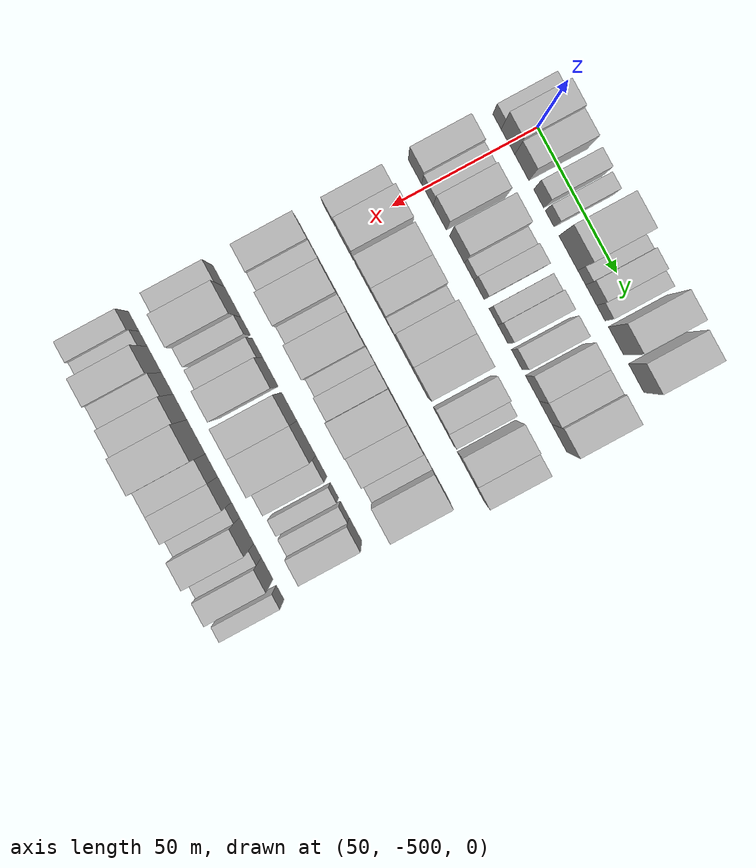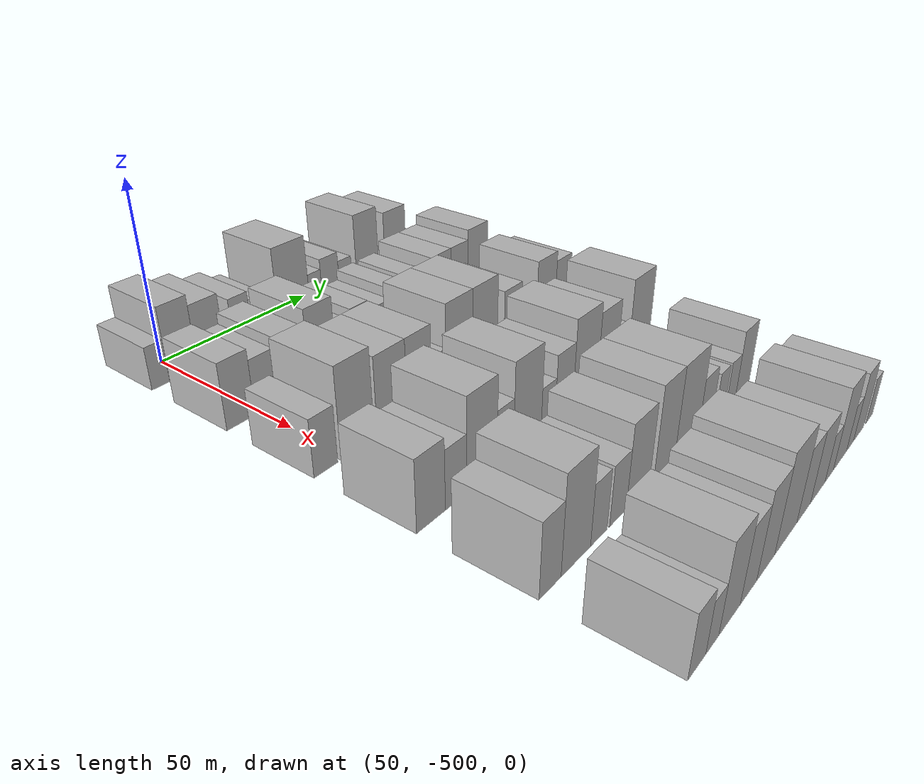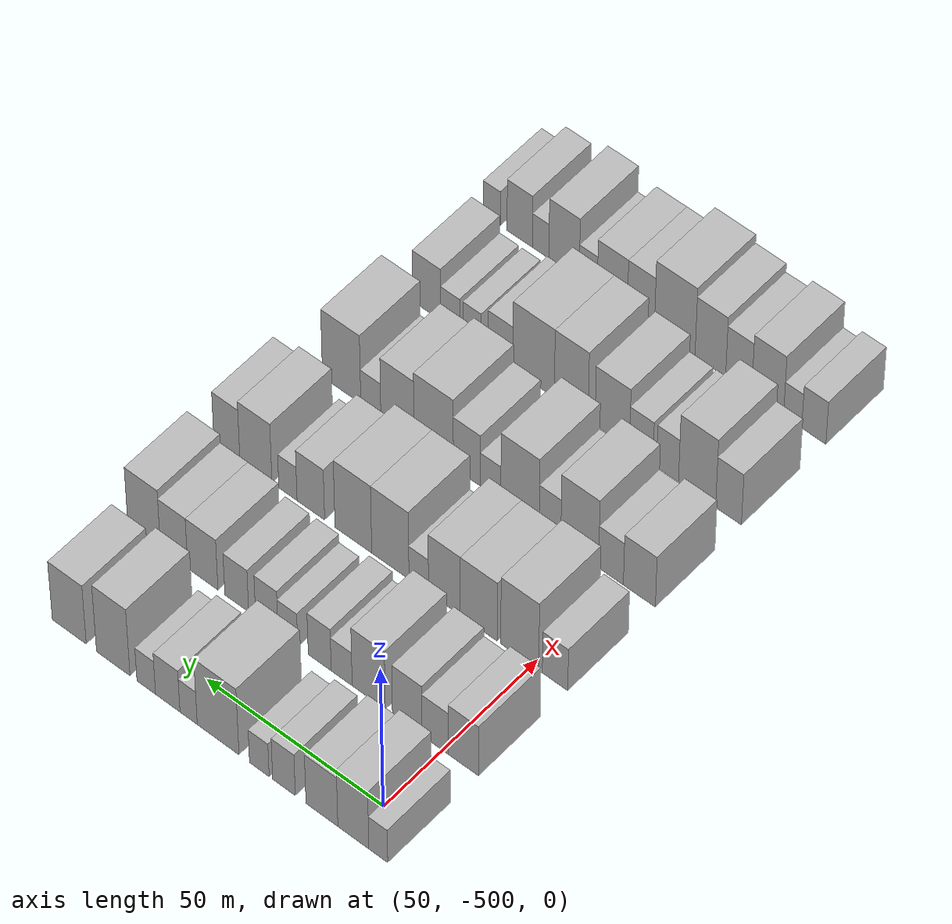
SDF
<sdf version="1.6">
 <world name="default">
  <model name="building_1">
   <static>1</static>
   <pose>50.0000 -507.3720 0 0.000000 0.000000 0.000000</pose>
   <link name="link">
    <pose>0 0 6.00 0 0 0</pose>
    <collision name="collision"><geometry><box><size>20.0000 5.2559 12.0000</size></box></geometry></collision>
    <visual name="visual">
     <cast_shadows>0</cast_shadows>
     <geometry><box><size>20.0000 5.2559 12.0000</size></box></geometry>
     <material>
      <script>
       <uri>model://HANNAS_wall/materials/scripts</uri>
       <uri>model://HANNAS_wall/materials/textures</uri>
       <name>vrc/HANNAS_wall</name>
      </script>
     </material>
    </visual>
   </link>
  </model>
  <model name="building_2">
   <static>1</static>
   <pose>50.0000 -500.4155 0 0.000000 0.000000 0.000000</pose>
   <link name="link">
    <pose>0 0 10.50 0 0 0</pose>
    <collision name="collision"><geometry><box><size>20.0000 8.6572 21.0000</size></box></geometry></collision>
    <visual name="visual">
     <cast_shadows>0</cast_shadows>
     <geometry><box><size>20.0000 8.6572 21.0000</size></box></geometry>
     <material>
      <script>
       <uri>model://HANNAS_wall/materials/scripts</uri>
       <uri>model://HANNAS_wall/materials/textures</uri>
       <name>vrc/HANNAS_wall</name>
      </script>
     </material>
    </visual>
   </link>
  </model>
  <model name="building_3">
   <static>1</static>
   <pose>50.0000 -491.6169 0 0.000000 0.000000 0.000000</pose>
   <link name="link">
    <pose>0 0 9.00 0 0 0</pose>
    <collision name="collision"><geometry><box><size>20.0000 8.9400 18.0000</size></box></geometry></collision>
    <visual name="visual">
     <cast_shadows>0</cast_shadows>
     <geometry><box><size>20.0000 8.9400 18.0000</size></box></geometry>
     <material>
      <script>
       <uri>model://HANNAS_wall/materials/scripts</uri>
       <uri>model://HANNAS_wall/materials/textures</uri>
       <name>vrc/HANNAS_wall</name>
      </script>
     </material>
    </visual>
   </link>
  </model>
  <model name="building_4">
   <static>1</static>
   <pose>50.0000 -480.9546 0 0.000000 0.000000 0.000000</pose>
   <link name="link">
    <pose>0 0 7.50 0 0 0</pose>
    <collision name="collision"><geometry><box><size>20.0000 6.3845 15.0000</size></box></geometry></collision>
    <visual name="visual">
     <cast_shadows>0</cast_shadows>
     <geometry><box><size>20.0000 6.3845 15.0000</size></box></geometry>
     <material>
      <script>
       <uri>model://HANNAS_wall/materials/scripts</uri>
       <uri>model://HANNAS_wall/materials/textures</uri>
       <name>vrc/HANNAS_wall</name>
      </script>
     </material>
    </visual>
   </link>
  </model>
  <model name="building_5">
   <static>1</static>
   <pose>50.0000 -473.9846 0 0.000000 0.000000 0.000000</pose>
   <link name="link">
    <pose>0 0 6.00 0 0 0</pose>
    <collision name="collision"><geometry><box><size>20.0000 5.5555 12.0000</size></box></geometry></collision>
    <visual name="visual">
     <cast_shadows>0</cast_shadows>
     <geometry><box><size>20.0000 5.5555 12.0000</size></box></geometry>
     <material>
      <script>
       <uri>model://HANNAS_wall/materials/scripts</uri>
       <uri>model://HANNAS_wall/materials/textures</uri>
       <name>vrc/HANNAS_wall</name>
      </script>
     </material>
    </visual>
   </link>
  </model>
  <model name="building_6">
   <static>1</static>
   <pose>50.0000 -462.2609 0 0.000000 0.000000 0.000000</pose>
   <link name="link">
    <pose>0 0 12.00 0 0 0</pose>
    <collision name="collision"><geometry><box><size>20.0000 11.8918 24.0000</size></box></geometry></collision>
    <visual name="visual">
     <cast_shadows>0</cast_shadows>
     <geometry><box><size>20.0000 11.8918 24.0000</size></box></geometry>
     <material>
      <script>
       <uri>model://HANNAS_wall/materials/scripts</uri>
       <uri>model://HANNAS_wall/materials/textures</uri>
       <name>vrc/HANNAS_wall</name>
      </script>
     </material>
    </visual>
   </link>
  </model>
  <model name="building_7">
   <static>1</static>
   <pose>50.0000 -453.8444 0 0.000000 0.000000 0.000000</pose>
   <link name="link">
    <pose>0 0 6.00 0 0 0</pose>
    <collision name="collision"><geometry><box><size>20.0000 4.9412 12.0000</size></box></geometry></collision>
    <visual name="visual">
     <cast_shadows>0</cast_shadows>
     <geometry><box><size>20.0000 4.9412 12.0000</size></box></geometry>
     <material>
      <script>
       <uri>model://HANNAS_wall/materials/scripts</uri>
       <uri>model://HANNAS_wall/materials/textures</uri>
       <name>vrc/HANNAS_wall</name>
      </script>
     </material>
    </visual>
   </link>
  </model>
  <model name="building_8">
   <static>1</static>
   <pose>50.0000 -447.8587 0 0.000000 0.000000 0.000000</pose>
   <link name="link">
    <pose>0 0 7.50 0 0 0</pose>
    <collision name="collision"><geometry><box><size>20.0000 7.0300 15.0000</size></box></geometry></collision>
    <visual name="visual">
     <cast_shadows>0</cast_shadows>
     <geometry><box><size>20.0000 7.0300 15.0000</size></box></geometry>
     <material>
      <script>
       <uri>model://HANNAS_wall/materials/scripts</uri>
       <uri>model://HANNAS_wall/materials/textures</uri>
       <name>vrc/HANNAS_wall</name>
      </script>
     </material>
    </visual>
   </link>
  </model>
  <model name="building_9">
   <static>1</static>
   <pose>50.0000 -441.6673 0 0.000000 0.000000 0.000000</pose>
   <link name="link">
    <pose>0 0 6.00 0 0 0</pose>
    <collision name="collision"><geometry><box><size>20.0000 5.3528 12.0000</size></box></geometry></collision>
    <visual name="visual">
     <cast_shadows>0</cast_shadows>
     <geometry><box><size>20.0000 5.3528 12.0000</size></box></geometry>
     <material>
      <script>
       <uri>model://HANNAS_wall/materials/scripts</uri>
       <uri>model://HANNAS_wall/materials/textures</uri>
       <name>vrc/HANNAS_wall</name>
      </script>
     </material>
    </visual>
   </link>
  </model>
  <model name="building_10">
   <static>1</static>
   <pose>50.0000 -432.1386 0 0.000000 0.000000 0.000000</pose>
   <link name="link">
    <pose>0 0 12.00 0 0 0</pose>
    <collision name="collision"><geometry><box><size>20.0000 9.7046 24.0000</size></box></geometry></collision>
    <visual name="visual">
     <cast_shadows>0</cast_shadows>
     <geometry><box><size>20.0000 9.7046 24.0000</size></box></geometry>
     <material>
      <script>
       <uri>model://HANNAS_wall/materials/scripts</uri>
       <uri>model://HANNAS_wall/materials/textures</uri>
       <name>vrc/HANNAS_wall</name>
      </script>
     </material>
    </visual>
   </link>
  </model>
  <model name="building_11">
   <static>1</static>
   <pose>50.0000 -419.3477 0 0.000000 0.000000 0.000000</pose>
   <link name="link">
    <pose>0 0 10.50 0 0 0</pose>
    <collision name="collision"><geometry><box><size>20.0000 9.8773 21.0000</size></box></geometry></collision>
    <visual name="visual">
     <cast_shadows>0</cast_shadows>
     <geometry><box><size>20.0000 9.8773 21.0000</size></box></geometry>
     <material>
      <script>
       <uri>model://HANNAS_wall/materials/scripts</uri>
       <uri>model://HANNAS_wall/materials/textures</uri>
       <name>vrc/HANNAS_wall</name>
      </script>
     </material>
    </visual>
   </link>
  </model>
  <model name="building_126">
   <static>1</static>
   <pose>79.0000 -505.7774 0 0.000000 0.000000 0.000000</pose>
   <link name="link">
    <pose>0 0 9.00 0 0 0</pose>
    <collision name="collision"><geometry><box><size>20.0000 8.4453 18.0000</size></box></geometry></collision>
    <visual name="visual">
     <cast_shadows>0</cast_shadows>
     <geometry><box><size>20.0000 8.4453 18.0000</size></box></geometry>
     <material>
      <script>
       <uri>model://HANNAS_wall/materials/scripts</uri>
       <uri>model://HANNAS_wall/materials/textures</uri>
       <name>vrc/HANNAS_wall</name>
      </script>
     </material>
    </visual>
   </link>
  </model>
  <model name="building_127">
   <static>1</static>
   <pose>79.0000 -497.8836 0 0.000000 0.000000 0.000000</pose>
   <link name="link">
    <pose>0 0 7.50 0 0 0</pose>
    <collision name="collision"><geometry><box><size>20.0000 7.3422 15.0000</size></box></geometry></collision>
    <visual name="visual">
     <cast_shadows>0</cast_shadows>
     <geometry><box><size>20.0000 7.3422 15.0000</size></box></geometry>
     <material>
      <script>
       <uri>model://HANNAS_wall/materials/scripts</uri>
       <uri>model://HANNAS_wall/materials/textures</uri>
       <name>vrc/HANNAS_wall</name>
      </script>
     </material>
    </visual>
   </link>
  </model>
  <model name="building_128">
   <static>1</static>
   <pose>79.0000 -490.0337 0 0.000000 0.000000 0.000000</pose>
   <link name="link">
    <pose>0 0 9.00 0 0 0</pose>
    <collision name="collision"><geometry><box><size>20.0000 8.3576 18.0000</size></box></geometry></collision>
    <visual name="visual">
     <cast_shadows>0</cast_shadows>
     <geometry><box><size>20.0000 8.3576 18.0000</size></box></geometry>
     <material>
      <script>
       <uri>model://HANNAS_wall/materials/scripts</uri>
       <uri>model://HANNAS_wall/materials/textures</uri>
       <name>vrc/HANNAS_wall</name>
      </script>
     </material>
    </visual>
   </link>
  </model>
  <model name="building_129">
   <static>1</static>
   <pose>79.0000 -479.1654 0 0.000000 0.000000 0.000000</pose>
   <link name="link">
    <pose>0 0 10.50 0 0 0</pose>
    <collision name="collision"><geometry><box><size>20.0000 9.3791 21.0000</size></box></geometry></collision>
    <visual name="visual">
     <cast_shadows>0</cast_shadows>
     <geometry><box><size>20.0000 9.3791 21.0000</size></box></geometry>
     <material>
      <script>
       <uri>model://HANNAS_wall/materials/scripts</uri>
       <uri>model://HANNAS_wall/materials/textures</uri>
       <name>vrc/HANNAS_wall</name>
      </script>
     </material>
    </visual>
   </link>
  </model>
  <model name="building_130">
   <static>1</static>
   <pose>79.0000 -471.4929 0 0.000000 0.000000 0.000000</pose>
   <link name="link">
    <pose>0 0 6.00 0 0 0</pose>
    <collision name="collision"><geometry><box><size>20.0000 5.9658 12.0000</size></box></geometry></collision>
    <visual name="visual">
     <cast_shadows>0</cast_shadows>
     <geometry><box><size>20.0000 5.9658 12.0000</size></box></geometry>
     <material>
      <script>
       <uri>model://HANNAS_wall/materials/scripts</uri>
       <uri>model://HANNAS_wall/materials/textures</uri>
       <name>vrc/HANNAS_wall</name>
      </script>
     </material>
    </visual>
   </link>
  </model>
  <model name="building_131">
   <static>1</static>
   <pose>79.0000 -465.2414 0 0.000000 0.000000 0.000000</pose>
   <link name="link">
    <pose>0 0 7.50 0 0 0</pose>
    <collision name="collision"><geometry><box><size>20.0000 6.5371 15.0000</size></box></geometry></collision>
    <visual name="visual">
     <cast_shadows>0</cast_shadows>
     <geometry><box><size>20.0000 6.5371 15.0000</size></box></geometry>
     <material>
      <script>
       <uri>model://HANNAS_wall/materials/scripts</uri>
       <uri>model://HANNAS_wall/materials/textures</uri>
       <name>vrc/HANNAS_wall</name>
      </script>
     </material>
    </visual>
   </link>
  </model>
  <model name="building_132">
   <static>1</static>
   <pose>79.0000 -456.1525 0 0.000000 0.000000 0.000000</pose>
   <link name="link">
    <pose>0 0 6.00 0 0 0</pose>
    <collision name="collision"><geometry><box><size>20.0000 5.6408 12.0000</size></box></geometry></collision>
    <visual name="visual">
     <cast_shadows>0</cast_shadows>
     <geometry><box><size>20.0000 5.6408 12.0000</size></box></geometry>
     <material>
      <script>
       <uri>model://HANNAS_wall/materials/scripts</uri>
       <uri>model://HANNAS_wall/materials/textures</uri>
       <name>vrc/HANNAS_wall</name>
      </script>
     </material>
    </visual>
   </link>
  </model>
  <model name="building_133">
   <static>1</static>
   <pose>79.0000 -450.1040 0 0.000000 0.000000 0.000000</pose>
   <link name="link">
    <pose>0 0 7.50 0 0 0</pose>
    <collision name="collision"><geometry><box><size>20.0000 6.4563 15.0000</size></box></geometry></collision>
    <visual name="visual">
     <cast_shadows>0</cast_shadows>
     <geometry><box><size>20.0000 6.4563 15.0000</size></box></geometry>
     <material>
      <script>
       <uri>model://HANNAS_wall/materials/scripts</uri>
       <uri>model://HANNAS_wall/materials/textures</uri>
       <name>vrc/HANNAS_wall</name>
      </script>
     </material>
    </visual>
   </link>
  </model>
  <model name="building_134">
   <static>1</static>
   <pose>79.0000 -441.4419 0 0.000000 0.000000 0.000000</pose>
   <link name="link">
    <pose>0 0 7.50 0 0 0</pose>
    <collision name="collision"><geometry><box><size>20.0000 6.8679 15.0000</size></box></geometry></collision>
    <visual name="visual">
     <cast_shadows>0</cast_shadows>
     <geometry><box><size>20.0000 6.8679 15.0000</size></box></geometry>
     <material>
      <script>
       <uri>model://HANNAS_wall/materials/scripts</uri>
       <uri>model://HANNAS_wall/materials/textures</uri>
       <name>vrc/HANNAS_wall</name>
      </script>
     </material>
    </visual>
   </link>
  </model>
  <model name="building_135">
   <static>1</static>
   <pose>79.0000 -431.6335 0 0.000000 0.000000 0.000000</pose>
   <link name="link">
    <pose>0 0 9.00 0 0 0</pose>
    <collision name="collision"><geometry><box><size>20.0000 8.7489 18.0000</size></box></geometry></collision>
    <visual name="visual">
     <cast_shadows>0</cast_shadows>
     <geometry><box><size>20.0000 8.7489 18.0000</size></box></geometry>
     <material>
      <script>
       <uri>model://HANNAS_wall/materials/scripts</uri>
       <uri>model://HANNAS_wall/materials/textures</uri>
       <name>vrc/HANNAS_wall</name>
      </script>
     </material>
    </visual>
   </link>
  </model>
  <model name="building_136">
   <static>1</static>
   <pose>79.0000 -423.2730 0 0.000000 0.000000 0.000000</pose>
   <link name="link">
    <pose>0 0 9.00 0 0 0</pose>
    <collision name="collision"><geometry><box><size>20.0000 7.9722 18.0000</size></box></geometry></collision>
    <visual name="visual">
     <cast_shadows>0</cast_shadows>
     <geometry><box><size>20.0000 7.9722 18.0000</size></box></geometry>
     <material>
      <script>
       <uri>model://HANNAS_wall/materials/scripts</uri>
       <uri>model://HANNAS_wall/materials/textures</uri>
       <name>vrc/HANNAS_wall</name>
      </script>
     </material>
    </visual>
   </link>
  </model>
  <model name="building_137">
   <static>1</static>
   <pose>79.0000 -414.5224 0 0.000000 0.000000 0.000000</pose>
   <link name="link">
    <pose>0 0 10.50 0 0 0</pose>
    <collision name="collision"><geometry><box><size>20.0000 9.5289 21.0000</size></box></geometry></collision>
    <visual name="visual">
     <cast_shadows>0</cast_shadows>
     <geometry><box><size>20.0000 9.5289 21.0000</size></box></geometry>
     <material>
      <script>
       <uri>model://HANNAS_wall/materials/scripts</uri>
       <uri>model://HANNAS_wall/materials/textures</uri>
       <name>vrc/HANNAS_wall</name>
      </script>
     </material>
    </visual>
   </link>
  </model>
  <model name="building_240">
   <static>1</static>
   <pose>108.0000 -506.4384 0 0.000000 0.000000 0.000000</pose>
   <link name="link">
    <pose>0 0 7.50 0 0 0</pose>
    <collision name="collision"><geometry><box><size>20.0000 7.1232 15.0000</size></box></geometry></collision>
    <visual name="visual">
     <cast_shadows>0</cast_shadows>
     <geometry><box><size>20.0000 7.1232 15.0000</size></box></geometry>
     <material>
      <script>
       <uri>model://HANNAS_wall/materials/scripts</uri>
       <uri>model://HANNAS_wall/materials/textures</uri>
       <name>vrc/HANNAS_wall</name>
      </script>
     </material>
    </visual>
   </link>
  </model>
  <model name="building_241">
   <static>1</static>
   <pose>108.0000 -496.5421 0 0.000000 0.000000 0.000000</pose>
   <link name="link">
    <pose>0 0 12.00 0 0 0</pose>
    <collision name="collision"><geometry><box><size>20.0000 10.6694 24.0000</size></box></geometry></collision>
    <visual name="visual">
     <cast_shadows>0</cast_shadows>
     <geometry><box><size>20.0000 10.6694 24.0000</size></box></geometry>
     <material>
      <script>
       <uri>model://HANNAS_wall/materials/scripts</uri>
       <uri>model://HANNAS_wall/materials/textures</uri>
       <name>vrc/HANNAS_wall</name>
      </script>
     </material>
    </visual>
   </link>
  </model>
  <model name="building_242">
   <static>1</static>
   <pose>108.0000 -484.9924 0 0.000000 0.000000 0.000000</pose>
   <link name="link">
    <pose>0 0 10.50 0 0 0</pose>
    <collision name="collision"><geometry><box><size>20.0000 10.4301 21.0000</size></box></geometry></collision>
    <visual name="visual">
     <cast_shadows>0</cast_shadows>
     <geometry><box><size>20.0000 10.4301 21.0000</size></box></geometry>
     <material>
      <script>
       <uri>model://HANNAS_wall/materials/scripts</uri>
       <uri>model://HANNAS_wall/materials/textures</uri>
       <name>vrc/HANNAS_wall</name>
      </script>
     </material>
    </visual>
   </link>
  </model>
  <model name="building_243">
   <static>1</static>
   <pose>108.0000 -475.2619 0 0.000000 0.000000 0.000000</pose>
   <link name="link">
    <pose>0 0 10.50 0 0 0</pose>
    <collision name="collision"><geometry><box><size>20.0000 9.0308 21.0000</size></box></geometry></collision>
    <visual name="visual">
     <cast_shadows>0</cast_shadows>
     <geometry><box><size>20.0000 9.0308 21.0000</size></box></geometry>
     <material>
      <script>
       <uri>model://HANNAS_wall/materials/scripts</uri>
       <uri>model://HANNAS_wall/materials/textures</uri>
       <name>vrc/HANNAS_wall</name>
      </script>
     </material>
    </visual>
   </link>
  </model>
  <model name="building_244">
   <static>1</static>
   <pose>108.0000 -467.9550 0 0.000000 0.000000 0.000000</pose>
   <link name="link">
    <pose>0 0 6.00 0 0 0</pose>
    <collision name="collision"><geometry><box><size>20.0000 5.5829 12.0000</size></box></geometry></collision>
    <visual name="visual">
     <cast_shadows>0</cast_shadows>
     <geometry><box><size>20.0000 5.5829 12.0000</size></box></geometry>
     <material>
      <script>
       <uri>model://HANNAS_wall/materials/scripts</uri>
       <uri>model://HANNAS_wall/materials/textures</uri>
       <name>vrc/HANNAS_wall</name>
      </script>
     </material>
    </visual>
   </link>
  </model>
  <model name="building_245">
   <static>1</static>
   <pose>108.0000 -459.8248 0 0.000000 0.000000 0.000000</pose>
   <link name="link">
    <pose>0 0 12.00 0 0 0</pose>
    <collision name="collision"><geometry><box><size>20.0000 10.6775 24.0000</size></box></geometry></collision>
    <visual name="visual">
     <cast_shadows>0</cast_shadows>
     <geometry><box><size>20.0000 10.6775 24.0000</size></box></geometry>
     <material>
      <script>
       <uri>model://HANNAS_wall/materials/scripts</uri>
       <uri>model://HANNAS_wall/materials/textures</uri>
       <name>vrc/HANNAS_wall</name>
      </script>
     </material>
    </visual>
   </link>
  </model>
  <model name="building_246">
   <static>1</static>
   <pose>108.0000 -449.1925 0 0.000000 0.000000 0.000000</pose>
   <link name="link">
    <pose>0 0 12.00 0 0 0</pose>
    <collision name="collision"><geometry><box><size>20.0000 10.5873 24.0000</size></box></geometry></collision>
    <visual name="visual">
     <cast_shadows>0</cast_shadows>
     <geometry><box><size>20.0000 10.5873 24.0000</size></box></geometry>
     <material>
      <script>
       <uri>model://HANNAS_wall/materials/scripts</uri>
       <uri>model://HANNAS_wall/materials/textures</uri>
       <name>vrc/HANNAS_wall</name>
      </script>
     </material>
    </visual>
   </link>
  </model>
  <model name="building_247">
   <static>1</static>
   <pose>108.0000 -436.8990 0 0.000000 0.000000 0.000000</pose>
   <link name="link">
    <pose>0 0 9.00 0 0 0</pose>
    <collision name="collision"><geometry><box><size>20.0000 7.9996 18.0000</size></box></geometry></collision>
    <visual name="visual">
     <cast_shadows>0</cast_shadows>
     <geometry><box><size>20.0000 7.9996 18.0000</size></box></geometry>
     <material>
      <script>
       <uri>model://HANNAS_wall/materials/scripts</uri>
       <uri>model://HANNAS_wall/materials/textures</uri>
       <name>vrc/HANNAS_wall</name>
      </script>
     </material>
    </visual>
   </link>
  </model>
  <model name="building_248">
   <static>1</static>
   <pose>108.0000 -430.2458 0 0.000000 0.000000 0.000000</pose>
   <link name="link">
    <pose>0 0 6.00 0 0 0</pose>
    <collision name="collision"><geometry><box><size>20.0000 5.3069 12.0000</size></box></geometry></collision>
    <visual name="visual">
     <cast_shadows>0</cast_shadows>
     <geometry><box><size>20.0000 5.3069 12.0000</size></box></geometry>
     <material>
      <script>
       <uri>model://HANNAS_wall/materials/scripts</uri>
       <uri>model://HANNAS_wall/materials/textures</uri>
       <name>vrc/HANNAS_wall</name>
      </script>
     </material>
    </visual>
   </link>
  </model>
  <model name="building_249">
   <static>1</static>
   <pose>108.0000 -420.8967 0 0.000000 0.000000 0.000000</pose>
   <link name="link">
    <pose>0 0 10.50 0 0 0</pose>
    <collision name="collision"><geometry><box><size>20.0000 9.3913 21.0000</size></box></geometry></collision>
    <visual name="visual">
     <cast_shadows>0</cast_shadows>
     <geometry><box><size>20.0000 9.3913 21.0000</size></box></geometry>
     <material>
      <script>
       <uri>model://HANNAS_wall/materials/scripts</uri>
       <uri>model://HANNAS_wall/materials/textures</uri>
       <name>vrc/HANNAS_wall</name>
      </script>
     </material>
    </visual>
   </link>
  </model>
  <model name="building_250">
   <static>1</static>
   <pose>108.0000 -412.4030 0 0.000000 0.000000 0.000000</pose>
   <link name="link">
    <pose>0 0 9.00 0 0 0</pose>
    <collision name="collision"><geometry><box><size>20.0000 7.5961 18.0000</size></box></geometry></collision>
    <visual name="visual">
     <cast_shadows>0</cast_shadows>
     <geometry><box><size>20.0000 7.5961 18.0000</size></box></geometry>
     <material>
      <script>
       <uri>model://HANNAS_wall/materials/scripts</uri>
       <uri>model://HANNAS_wall/materials/textures</uri>
       <name>vrc/HANNAS_wall</name>
      </script>
     </material>
    </visual>
   </link>
  </model>
  <model name="building_349">
   <static>1</static>
   <pose>137.0000 -505.5143 0 0.000000 0.000000 0.000000</pose>
   <link name="link">
    <pose>0 0 9.00 0 0 0</pose>
    <collision name="collision"><geometry><box><size>20.0000 8.9715 18.0000</size></box></geometry></collision>
    <visual name="visual">
     <cast_shadows>0</cast_shadows>
     <geometry><box><size>20.0000 8.9715 18.0000</size></box></geometry>
     <material>
      <script>
       <uri>model://HANNAS_wall/materials/scripts</uri>
       <uri>model://HANNAS_wall/materials/textures</uri>
       <name>vrc/HANNAS_wall</name>
      </script>
     </material>
    </visual>
   </link>
  </model>
  <model name="building_350">
   <static>1</static>
   <pose>137.0000 -497.5231 0 0.000000 0.000000 0.000000</pose>
   <link name="link">
    <pose>0 0 7.50 0 0 0</pose>
    <collision name="collision"><geometry><box><size>20.0000 7.0109 15.0000</size></box></geometry></collision>
    <visual name="visual">
     <cast_shadows>0</cast_shadows>
     <geometry><box><size>20.0000 7.0109 15.0000</size></box></geometry>
     <material>
      <script>
       <uri>model://HANNAS_wall/materials/scripts</uri>
       <uri>model://HANNAS_wall/materials/textures</uri>
       <name>vrc/HANNAS_wall</name>
      </script>
     </material>
    </visual>
   </link>
  </model>
  <model name="building_351">
   <static>1</static>
   <pose>137.0000 -488.6831 0 0.000000 0.000000 0.000000</pose>
   <link name="link">
    <pose>0 0 12.00 0 0 0</pose>
    <collision name="collision"><geometry><box><size>20.0000 10.6690 24.0000</size></box></geometry></collision>
    <visual name="visual">
     <cast_shadows>0</cast_shadows>
     <geometry><box><size>20.0000 10.6690 24.0000</size></box></geometry>
     <material>
      <script>
       <uri>model://HANNAS_wall/materials/scripts</uri>
       <uri>model://HANNAS_wall/materials/textures</uri>
       <name>vrc/HANNAS_wall</name>
      </script>
     </material>
    </visual>
   </link>
  </model>
  <model name="building_352">
   <static>1</static>
   <pose>137.0000 -480.2746 0 0.000000 0.000000 0.000000</pose>
   <link name="link">
    <pose>0 0 7.50 0 0 0</pose>
    <collision name="collision"><geometry><box><size>20.0000 6.1480 15.0000</size></box></geometry></collision>
    <visual name="visual">
     <cast_shadows>0</cast_shadows>
     <geometry><box><size>20.0000 6.1480 15.0000</size></box></geometry>
     <material>
      <script>
       <uri>model://HANNAS_wall/materials/scripts</uri>
       <uri>model://HANNAS_wall/materials/textures</uri>
       <name>vrc/HANNAS_wall</name>
      </script>
     </material>
    </visual>
   </link>
  </model>
  <model name="building_353">
   <static>1</static>
   <pose>137.0000 -471.7348 0 0.000000 0.000000 0.000000</pose>
   <link name="link">
    <pose>0 0 12.00 0 0 0</pose>
    <collision name="collision"><geometry><box><size>20.0000 10.9318 24.0000</size></box></geometry></collision>
    <visual name="visual">
     <cast_shadows>0</cast_shadows>
     <geometry><box><size>20.0000 10.9318 24.0000</size></box></geometry>
     <material>
      <script>
       <uri>model://HANNAS_wall/materials/scripts</uri>
       <uri>model://HANNAS_wall/materials/textures</uri>
       <name>vrc/HANNAS_wall</name>
      </script>
     </material>
    </visual>
   </link>
  </model>
  <model name="building_354">
   <static>1</static>
   <pose>137.0000 -463.3557 0 0.000000 0.000000 0.000000</pose>
   <link name="link">
    <pose>0 0 6.00 0 0 0</pose>
    <collision name="collision"><geometry><box><size>20.0000 5.8263 12.0000</size></box></geometry></collision>
    <visual name="visual">
     <cast_shadows>0</cast_shadows>
     <geometry><box><size>20.0000 5.8263 12.0000</size></box></geometry>
     <material>
      <script>
       <uri>model://HANNAS_wall/materials/scripts</uri>
       <uri>model://HANNAS_wall/materials/textures</uri>
       <name>vrc/HANNAS_wall</name>
      </script>
     </material>
    </visual>
   </link>
  </model>
  <model name="building_355">
   <static>1</static>
   <pose>137.0000 -456.5477 0 0.000000 0.000000 0.000000</pose>
   <link name="link">
    <pose>0 0 9.00 0 0 0</pose>
    <collision name="collision"><geometry><box><size>20.0000 7.7898 18.0000</size></box></geometry></collision>
    <visual name="visual">
     <cast_shadows>0</cast_shadows>
     <geometry><box><size>20.0000 7.7898 18.0000</size></box></geometry>
     <material>
      <script>
       <uri>model://HANNAS_wall/materials/scripts</uri>
       <uri>model://HANNAS_wall/materials/textures</uri>
       <name>vrc/HANNAS_wall</name>
      </script>
     </material>
    </visual>
   </link>
  </model>
  <model name="building_356">
   <static>1</static>
   <pose>137.0000 -446.9699 0 0.000000 0.000000 0.000000</pose>
   <link name="link">
    <pose>0 0 12.00 0 0 0</pose>
    <collision name="collision"><geometry><box><size>20.0000 11.3658 24.0000</size></box></geometry></collision>
    <visual name="visual">
     <cast_shadows>0</cast_shadows>
     <geometry><box><size>20.0000 11.3658 24.0000</size></box></geometry>
     <material>
      <script>
       <uri>model://HANNAS_wall/materials/scripts</uri>
       <uri>model://HANNAS_wall/materials/textures</uri>
       <name>vrc/HANNAS_wall</name>
      </script>
     </material>
    </visual>
   </link>
  </model>
  <model name="building_357">
   <static>1</static>
   <pose>137.0000 -436.4491 0 0.000000 0.000000 0.000000</pose>
   <link name="link">
    <pose>0 0 10.50 0 0 0</pose>
    <collision name="collision"><geometry><box><size>20.0000 9.6758 21.0000</size></box></geometry></collision>
    <visual name="visual">
     <cast_shadows>0</cast_shadows>
     <geometry><box><size>20.0000 9.6758 21.0000</size></box></geometry>
     <material>
      <script>
       <uri>model://HANNAS_wall/materials/scripts</uri>
       <uri>model://HANNAS_wall/materials/textures</uri>
       <name>vrc/HANNAS_wall</name>
      </script>
     </material>
    </visual>
   </link>
  </model>
  <model name="building_358">
   <static>1</static>
   <pose>137.0000 -428.6806 0 0.000000 0.000000 0.000000</pose>
   <link name="link">
    <pose>0 0 6.00 0 0 0</pose>
    <collision name="collision"><geometry><box><size>20.0000 5.8612 12.0000</size></box></geometry></collision>
    <visual name="visual">
     <cast_shadows>0</cast_shadows>
     <geometry><box><size>20.0000 5.8612 12.0000</size></box></geometry>
     <material>
      <script>
       <uri>model://HANNAS_wall/materials/scripts</uri>
       <uri>model://HANNAS_wall/materials/textures</uri>
       <name>vrc/HANNAS_wall</name>
      </script>
     </material>
    </visual>
   </link>
  </model>
  <model name="building_359">
   <static>1</static>
   <pose>137.0000 -420.1443 0 0.000000 0.000000 0.000000</pose>
   <link name="link">
    <pose>0 0 12.00 0 0 0</pose>
    <collision name="collision"><geometry><box><size>20.0000 11.2114 24.0000</size></box></geometry></collision>
    <visual name="visual">
     <cast_shadows>0</cast_shadows>
     <geometry><box><size>20.0000 11.2114 24.0000</size></box></geometry>
     <material>
      <script>
       <uri>model://HANNAS_wall/materials/scripts</uri>
       <uri>model://HANNAS_wall/materials/textures</uri>
       <name>vrc/HANNAS_wall</name>
      </script>
     </material>
    </visual>
   </link>
  </model>
  <model name="building_460">
   <static>1</static>
   <pose>166.0000 -506.3725 0 0.000000 0.000000 0.000000</pose>
   <link name="link">
    <pose>0 0 9.00 0 0 0</pose>
    <collision name="collision"><geometry><box><size>20.0000 7.2551 18.0000</size></box></geometry></collision>
    <visual name="visual">
     <cast_shadows>0</cast_shadows>
     <geometry><box><size>20.0000 7.2551 18.0000</size></box></geometry>
     <material>
      <script>
       <uri>model://HANNAS_wall/materials/scripts</uri>
       <uri>model://HANNAS_wall/materials/textures</uri>
       <name>vrc/HANNAS_wall</name>
      </script>
     </material>
    </visual>
   </link>
  </model>
  <model name="building_461">
   <static>1</static>
   <pose>166.0000 -497.5041 0 0.000000 0.000000 0.000000</pose>
   <link name="link">
    <pose>0 0 12.00 0 0 0</pose>
    <collision name="collision"><geometry><box><size>20.0000 10.4818 24.0000</size></box></geometry></collision>
    <visual name="visual">
     <cast_shadows>0</cast_shadows>
     <geometry><box><size>20.0000 10.4818 24.0000</size></box></geometry>
     <material>
      <script>
       <uri>model://HANNAS_wall/materials/scripts</uri>
       <uri>model://HANNAS_wall/materials/textures</uri>
       <name>vrc/HANNAS_wall</name>
      </script>
     </material>
    </visual>
   </link>
  </model>
  <model name="building_462">
   <static>1</static>
   <pose>166.0000 -489.1427 0 0.000000 0.000000 0.000000</pose>
   <link name="link">
    <pose>0 0 7.50 0 0 0</pose>
    <collision name="collision"><geometry><box><size>20.0000 6.2410 15.0000</size></box></geometry></collision>
    <visual name="visual">
     <cast_shadows>0</cast_shadows>
     <geometry><box><size>20.0000 6.2410 15.0000</size></box></geometry>
     <material>
      <script>
       <uri>model://HANNAS_wall/materials/scripts</uri>
       <uri>model://HANNAS_wall/materials/textures</uri>
       <name>vrc/HANNAS_wall</name>
      </script>
     </material>
    </visual>
   </link>
  </model>
  <model name="building_463">
   <static>1</static>
   <pose>166.0000 -481.6739 0 0.000000 0.000000 0.000000</pose>
   <link name="link">
    <pose>0 0 7.50 0 0 0</pose>
    <collision name="collision"><geometry><box><size>20.0000 6.6966 15.0000</size></box></geometry></collision>
    <visual name="visual">
     <cast_shadows>0</cast_shadows>
     <geometry><box><size>20.0000 6.6966 15.0000</size></box></geometry>
     <material>
      <script>
       <uri>model://HANNAS_wall/materials/scripts</uri>
       <uri>model://HANNAS_wall/materials/textures</uri>
       <name>vrc/HANNAS_wall</name>
      </script>
     </material>
    </visual>
   </link>
  </model>
  <model name="building_464">
   <static>1</static>
   <pose>166.0000 -473.4098 0 0.000000 0.000000 0.000000</pose>
   <link name="link">
    <pose>0 0 10.50 0 0 0</pose>
    <collision name="collision"><geometry><box><size>20.0000 9.8315 21.0000</size></box></geometry></collision>
    <visual name="visual">
     <cast_shadows>0</cast_shadows>
     <geometry><box><size>20.0000 9.8315 21.0000</size></box></geometry>
     <material>
      <script>
       <uri>model://HANNAS_wall/materials/scripts</uri>
       <uri>model://HANNAS_wall/materials/textures</uri>
       <name>vrc/HANNAS_wall</name>
      </script>
     </material>
    </visual>
   </link>
  </model>
  <model name="building_465">
   <static>1</static>
   <pose>166.0000 -461.6357 0 0.000000 0.000000 0.000000</pose>
   <link name="link">
    <pose>0 0 12.00 0 0 0</pose>
    <collision name="collision"><geometry><box><size>20.0000 9.7166 24.0000</size></box></geometry></collision>
    <visual name="visual">
     <cast_shadows>0</cast_shadows>
     <geometry><box><size>20.0000 9.7166 24.0000</size></box></geometry>
     <material>
      <script>
       <uri>model://HANNAS_wall/materials/scripts</uri>
       <uri>model://HANNAS_wall/materials/textures</uri>
       <name>vrc/HANNAS_wall</name>
      </script>
     </material>
    </visual>
   </link>
  </model>
  <model name="building_466">
   <static>1</static>
   <pose>166.0000 -450.8115 0 0.000000 0.000000 0.000000</pose>
   <link name="link">
    <pose>0 0 12.00 0 0 0</pose>
    <collision name="collision"><geometry><box><size>20.0000 11.9317 24.0000</size></box></geometry></collision>
    <visual name="visual">
     <cast_shadows>0</cast_shadows>
     <geometry><box><size>20.0000 11.9317 24.0000</size></box></geometry>
     <material>
      <script>
       <uri>model://HANNAS_wall/materials/scripts</uri>
       <uri>model://HANNAS_wall/materials/textures</uri>
       <name>vrc/HANNAS_wall</name>
      </script>
     </material>
    </visual>
   </link>
  </model>
  <model name="building_467">
   <static>1</static>
   <pose>166.0000 -441.2325 0 0.000000 0.000000 0.000000</pose>
   <link name="link">
    <pose>0 0 7.50 0 0 0</pose>
    <collision name="collision"><geometry><box><size>20.0000 7.2265 15.0000</size></box></geometry></collision>
    <visual name="visual">
     <cast_shadows>0</cast_shadows>
     <geometry><box><size>20.0000 7.2265 15.0000</size></box></geometry>
     <material>
      <script>
       <uri>model://HANNAS_wall/materials/scripts</uri>
       <uri>model://HANNAS_wall/materials/textures</uri>
       <name>vrc/HANNAS_wall</name>
      </script>
     </material>
    </visual>
   </link>
  </model>
  <model name="building_468">
   <static>1</static>
   <pose>166.0000 -432.9684 0 0.000000 0.000000 0.000000</pose>
   <link name="link">
    <pose>0 0 6.00 0 0 0</pose>
    <collision name="collision"><geometry><box><size>20.0000 5.3015 12.0000</size></box></geometry></collision>
    <visual name="visual">
     <cast_shadows>0</cast_shadows>
     <geometry><box><size>20.0000 5.3015 12.0000</size></box></geometry>
     <material>
      <script>
       <uri>model://HANNAS_wall/materials/scripts</uri>
       <uri>model://HANNAS_wall/materials/textures</uri>
       <name>vrc/HANNAS_wall</name>
      </script>
     </material>
    </visual>
   </link>
  </model>
  <model name="building_469">
   <static>1</static>
   <pose>166.0000 -426.5558 0 0.000000 0.000000 0.000000</pose>
   <link name="link">
    <pose>0 0 6.00 0 0 0</pose>
    <collision name="collision"><geometry><box><size>20.0000 5.5237 12.0000</size></box></geometry></collision>
    <visual name="visual">
     <cast_shadows>0</cast_shadows>
     <geometry><box><size>20.0000 5.5237 12.0000</size></box></geometry>
     <material>
      <script>
       <uri>model://HANNAS_wall/materials/scripts</uri>
       <uri>model://HANNAS_wall/materials/textures</uri>
       <name>vrc/HANNAS_wall</name>
      </script>
     </material>
    </visual>
   </link>
  </model>
  <model name="building_470">
   <static>1</static>
   <pose>166.0000 -419.6786 0 0.000000 0.000000 0.000000</pose>
   <link name="link">
    <pose>0 0 9.00 0 0 0</pose>
    <collision name="collision"><geometry><box><size>20.0000 8.2308 18.0000</size></box></geometry></collision>
    <visual name="visual">
     <cast_shadows>0</cast_shadows>
     <geometry><box><size>20.0000 8.2308 18.0000</size></box></geometry>
     <material>
      <script>
       <uri>model://HANNAS_wall/materials/scripts</uri>
       <uri>model://HANNAS_wall/materials/textures</uri>
       <name>vrc/HANNAS_wall</name>
      </script>
     </material>
    </visual>
   </link>
  </model>
  <model name="building_574">
   <static>1</static>
   <pose>195.0000 -506.5994 0 0.000000 0.000000 0.000000</pose>
   <link name="link">
    <pose>0 0 7.50 0 0 0</pose>
    <collision name="collision"><geometry><box><size>20.0000 6.8012 15.0000</size></box></geometry></collision>
    <visual name="visual">
     <cast_shadows>0</cast_shadows>
     <geometry><box><size>20.0000 6.8012 15.0000</size></box></geometry>
     <material>
      <script>
       <uri>model://HANNAS_wall/materials/scripts</uri>
       <uri>model://HANNAS_wall/materials/textures</uri>
       <name>vrc/HANNAS_wall</name>
      </script>
     </material>
    </visual>
   </link>
  </model>
  <model name="building_575">
   <static>1</static>
   <pose>195.0000 -500.6262 0 0.000000 0.000000 0.000000</pose>
   <link name="link">
    <pose>0 0 6.00 0 0 0</pose>
    <collision name="collision"><geometry><box><size>20.0000 5.1451 12.0000</size></box></geometry></collision>
    <visual name="visual">
     <cast_shadows>0</cast_shadows>
     <geometry><box><size>20.0000 5.1451 12.0000</size></box></geometry>
     <material>
      <script>
       <uri>model://HANNAS_wall/materials/scripts</uri>
       <uri>model://HANNAS_wall/materials/textures</uri>
       <name>vrc/HANNAS_wall</name>
      </script>
     </material>
    </visual>
   </link>
  </model>
  <model name="building_576">
   <static>1</static>
   <pose>195.0000 -493.5283 0 0.000000 0.000000 0.000000</pose>
   <link name="link">
    <pose>0 0 10.50 0 0 0</pose>
    <collision name="collision"><geometry><box><size>20.0000 9.0507 21.0000</size></box></geometry></collision>
    <visual name="visual">
     <cast_shadows>0</cast_shadows>
     <geometry><box><size>20.0000 9.0507 21.0000</size></box></geometry>
     <material>
      <script>
       <uri>model://HANNAS_wall/materials/scripts</uri>
       <uri>model://HANNAS_wall/materials/textures</uri>
       <name>vrc/HANNAS_wall</name>
      </script>
     </material>
    </visual>
   </link>
  </model>
  <model name="building_577">
   <static>1</static>
   <pose>195.0000 -485.2956 0 0.000000 0.000000 0.000000</pose>
   <link name="link">
    <pose>0 0 9.00 0 0 0</pose>
    <collision name="collision"><geometry><box><size>20.0000 7.4147 18.0000</size></box></geometry></collision>
    <visual name="visual">
     <cast_shadows>0</cast_shadows>
     <geometry><box><size>20.0000 7.4147 18.0000</size></box></geometry>
     <material>
      <script>
       <uri>model://HANNAS_wall/materials/scripts</uri>
       <uri>model://HANNAS_wall/materials/textures</uri>
       <name>vrc/HANNAS_wall</name>
      </script>
     </material>
    </visual>
   </link>
  </model>
  <model name="building_578">
   <static>1</static>
   <pose>195.0000 -477.2130 0 0.000000 0.000000 0.000000</pose>
   <link name="link">
    <pose>0 0 10.50 0 0 0</pose>
    <collision name="collision"><geometry><box><size>20.0000 8.7505 21.0000</size></box></geometry></collision>
    <visual name="visual">
     <cast_shadows>0</cast_shadows>
     <geometry><box><size>20.0000 8.7505 21.0000</size></box></geometry>
     <material>
      <script>
       <uri>model://HANNAS_wall/materials/scripts</uri>
       <uri>model://HANNAS_wall/materials/textures</uri>
       <name>vrc/HANNAS_wall</name>
      </script>
     </material>
    </visual>
   </link>
  </model>
  <model name="building_579">
   <static>1</static>
   <pose>195.0000 -466.9958 0 0.000000 0.000000 0.000000</pose>
   <link name="link">
    <pose>0 0 12.00 0 0 0</pose>
    <collision name="collision"><geometry><box><size>20.0000 11.6839 24.0000</size></box></geometry></collision>
    <visual name="visual">
     <cast_shadows>0</cast_shadows>
     <geometry><box><size>20.0000 11.6839 24.0000</size></box></geometry>
     <material>
      <script>
       <uri>model://HANNAS_wall/materials/scripts</uri>
       <uri>model://HANNAS_wall/materials/textures</uri>
       <name>vrc/HANNAS_wall</name>
      </script>
     </material>
    </visual>
   </link>
  </model>
  <model name="building_580">
   <static>1</static>
   <pose>195.0000 -457.2458 0 0.000000 0.000000 0.000000</pose>
   <link name="link">
    <pose>0 0 9.00 0 0 0</pose>
    <collision name="collision"><geometry><box><size>20.0000 7.8162 18.0000</size></box></geometry></collision>
    <visual name="visual">
     <cast_shadows>0</cast_shadows>
     <geometry><box><size>20.0000 7.8162 18.0000</size></box></geometry>
     <material>
      <script>
       <uri>model://HANNAS_wall/materials/scripts</uri>
       <uri>model://HANNAS_wall/materials/textures</uri>
       <name>vrc/HANNAS_wall</name>
      </script>
     </material>
    </visual>
   </link>
  </model>
  <model name="building_581">
   <static>1</static>
   <pose>195.0000 -448.9676 0 0.000000 0.000000 0.000000</pose>
   <link name="link">
    <pose>0 0 9.00 0 0 0</pose>
    <collision name="collision"><geometry><box><size>20.0000 8.7403 18.0000</size></box></geometry></collision>
    <visual name="visual">
     <cast_shadows>0</cast_shadows>
     <geometry><box><size>20.0000 8.7403 18.0000</size></box></geometry>
     <material>
      <script>
       <uri>model://HANNAS_wall/materials/scripts</uri>
       <uri>model://HANNAS_wall/materials/textures</uri>
       <name>vrc/HANNAS_wall</name>
      </script>
     </material>
    </visual>
   </link>
  </model>
  <model name="building_582">
   <static>1</static>
   <pose>195.0000 -441.9755 0 0.000000 0.000000 0.000000</pose>
   <link name="link">
    <pose>0 0 6.00 0 0 0</pose>
    <collision name="collision"><geometry><box><size>20.0000 5.2439 12.0000</size></box></geometry></collision>
    <visual name="visual">
     <cast_shadows>0</cast_shadows>
     <geometry><box><size>20.0000 5.2439 12.0000</size></box></geometry>
     <material>
      <script>
       <uri>model://HANNAS_wall/materials/scripts</uri>
       <uri>model://HANNAS_wall/materials/textures</uri>
       <name>vrc/HANNAS_wall</name>
      </script>
     </material>
    </visual>
   </link>
  </model>
  <model name="building_583">
   <static>1</static>
   <pose>195.0000 -434.9163 0 0.000000 0.000000 0.000000</pose>
   <link name="link">
    <pose>0 0 10.50 0 0 0</pose>
    <collision name="collision"><geometry><box><size>20.0000 8.8745 21.0000</size></box></geometry></collision>
    <visual name="visual">
     <cast_shadows>0</cast_shadows>
     <geometry><box><size>20.0000 8.8745 21.0000</size></box></geometry>
     <material>
      <script>
       <uri>model://HANNAS_wall/materials/scripts</uri>
       <uri>model://HANNAS_wall/materials/textures</uri>
       <name>vrc/HANNAS_wall</name>
      </script>
     </material>
    </visual>
   </link>
  </model>
  <model name="building_584">
   <static>1</static>
   <pose>195.0000 -428.0646 0 0.000000 0.000000 0.000000</pose>
   <link name="link">
    <pose>0 0 6.00 0 0 0</pose>
    <collision name="collision"><geometry><box><size>20.0000 4.8288 12.0000</size></box></geometry></collision>
    <visual name="visual">
     <cast_shadows>0</cast_shadows>
     <geometry><box><size>20.0000 4.8288 12.0000</size></box></geometry>
     <material>
      <script>
       <uri>model://HANNAS_wall/materials/scripts</uri>
       <uri>model://HANNAS_wall/materials/textures</uri>
       <name>vrc/HANNAS_wall</name>
      </script>
     </material>
    </visual>
   </link>
  </model>
  <model name="building_585">
   <static>1</static>
   <pose>195.0000 -421.9259 0 0.000000 0.000000 0.000000</pose>
   <link name="link">
    <pose>0 0 9.00 0 0 0</pose>
    <collision name="collision"><geometry><box><size>20.0000 7.4487 18.0000</size></box></geometry></collision>
    <visual name="visual">
     <cast_shadows>0</cast_shadows>
     <geometry><box><size>20.0000 7.4487 18.0000</size></box></geometry>
     <material>
      <script>
       <uri>model://HANNAS_wall/materials/scripts</uri>
       <uri>model://HANNAS_wall/materials/textures</uri>
       <name>vrc/HANNAS_wall</name>
      </script>
     </material>
    </visual>
   </link>
  </model>
  <model name="building_586">
   <static>1</static>
   <pose>195.0000 -413.7141 0 0.000000 0.000000 0.000000</pose>
   <link name="link">
    <pose>0 0 6.00 0 0 0</pose>
    <collision name="collision"><geometry><box><size>20.0000 4.9749 12.0000</size></box></geometry></collision>
    <visual name="visual">
     <cast_shadows>0</cast_shadows>
     <geometry><box><size>20.0000 4.9749 12.0000</size></box></geometry>
     <material>
      <script>
       <uri>model://HANNAS_wall/materials/scripts</uri>
       <uri>model://HANNAS_wall/materials/textures</uri>
       <name>vrc/HANNAS_wall</name>
      </script>
     </material>
    </visual>
   </link>
  </model>
 </world>
</sdf>
